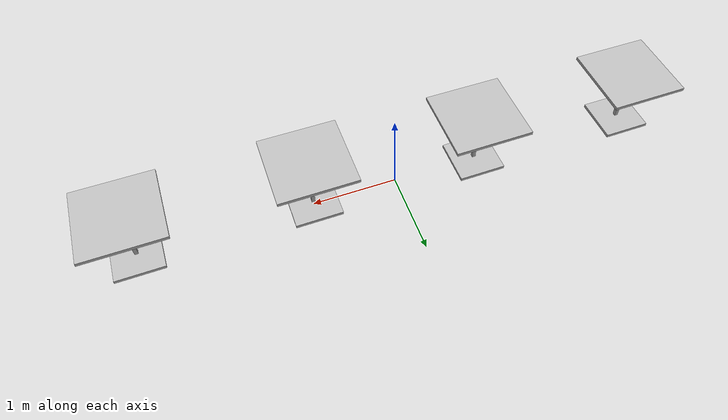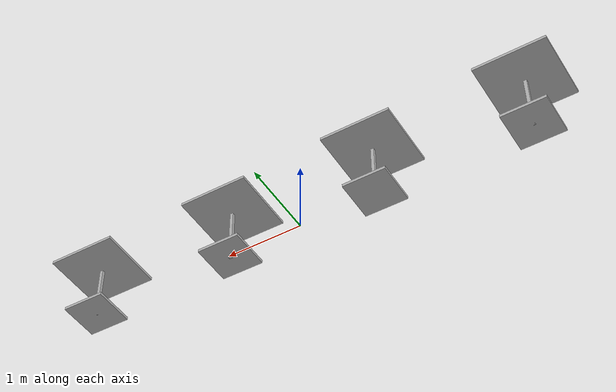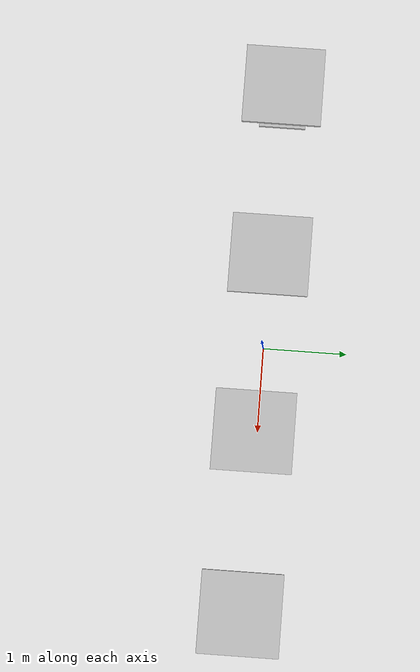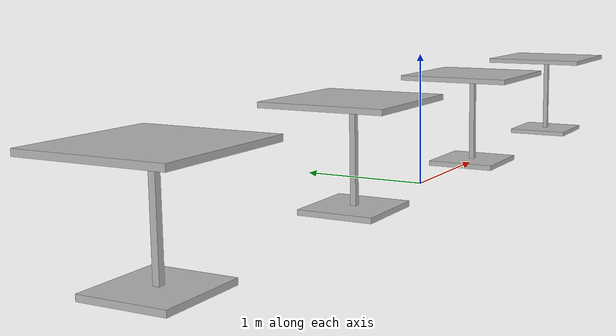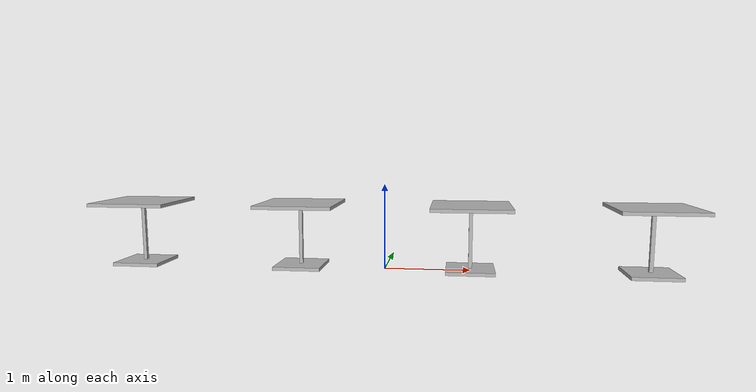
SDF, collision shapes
<?xml version='1.0'?>
<sdf version='1.7'>
  <model name='library_tables'>
    <model name='cafe_table'>
      <static>1</static>
      <link name='link'>
        <collision name='surface'>
          <pose>0 0 0.755 0 -0 0</pose>
          <geometry>
            <box>
              <size>0.913 0.913 0.04</size>
            </box>
          </geometry>
        </collision>
        <collision name='column'>
          <pose>0 0 0.37 0 -0 0</pose>
          <geometry>
            <box>
              <size>0.042 0.042 0.74</size>
            </box>
          </geometry>
        </collision>
        <collision name='base'>
          <pose>0 0 0.02 0 -0 0</pose>
          <geometry>
            <box>
              <size>0.56 0.56 0.04</size>
            </box>
          </geometry>
        </collision>
        <visual name='visual'>
          <geometry>
            <mesh>
              <uri>model://cafe_table/meshes/cafe_table.dae</uri>
            </mesh>
          </geometry>
        </visual>
      </link>
      <pose>3.01541 -0.022966 0 0 -0 0</pose>
    </model>
    <model name='cafe_table_0'>
      <static>1</static>
      <link name='link'>
        <collision name='surface'>
          <pose>0 0 0.755 0 -0 0</pose>
          <geometry>
            <box>
              <size>0.913 0.913 0.04</size>
            </box>
          </geometry>
        </collision>
        <collision name='column'>
          <pose>0 0 0.37 0 -0 0</pose>
          <geometry>
            <box>
              <size>0.042 0.042 0.74</size>
            </box>
          </geometry>
        </collision>
        <collision name='base'>
          <pose>0 0 0.02 0 -0 0</pose>
          <geometry>
            <box>
              <size>0.56 0.56 0.04</size>
            </box>
          </geometry>
        </collision>
        <visual name='visual'>
          <geometry>
            <mesh>
              <uri>model://cafe_table/meshes/cafe_table.dae</uri>
            </mesh>
          </geometry>
        </visual>
      </link>
      <pose>1.00034 -0.022956 0 0 -0 0</pose>
    </model>
    <model name='cafe_table_1'>
      <static>1</static>
      <link name='link'>
        <collision name='surface'>
          <pose>0 0 0.755 0 -0 0</pose>
          <geometry>
            <box>
              <size>0.913 0.913 0.04</size>
            </box>
          </geometry>
        </collision>
        <collision name='column'>
          <pose>0 0 0.37 0 -0 0</pose>
          <geometry>
            <box>
              <size>0.042 0.042 0.74</size>
            </box>
          </geometry>
        </collision>
        <collision name='base'>
          <pose>0 0 0.02 0 -0 0</pose>
          <geometry>
            <box>
              <size>0.56 0.56 0.04</size>
            </box>
          </geometry>
        </collision>
        <visual name='visual'>
          <geometry>
            <mesh>
              <uri>model://cafe_table/meshes/cafe_table.dae</uri>
            </mesh>
          </geometry>
        </visual>
      </link>
      <pose>-1.01473 0.016389 0 0 -0 0</pose>
    </model>
    <model name='cafe_table_2'>
      <static>1</static>
      <link name='link'>
        <collision name='surface'>
          <pose>0 0 0.755 0 -0 0</pose>
          <geometry>
            <box>
              <size>0.913 0.913 0.04</size>
            </box>
          </geometry>
        </collision>
        <collision name='column'>
          <pose>0 0 0.37 0 -0 0</pose>
          <geometry>
            <box>
              <size>0.042 0.042 0.74</size>
            </box>
          </geometry>
        </collision>
        <collision name='base'>
          <pose>0 0 0.02 0 -0 0</pose>
          <geometry>
            <box>
              <size>0.56 0.56 0.04</size>
            </box>
          </geometry>
        </collision>
        <visual name='visual'>
          <geometry>
            <mesh>
              <uri>model://cafe_table/meshes/cafe_table.dae</uri>
            </mesh>
          </geometry>
        </visual>
      </link>
      <pose>-3.00102 0.029534 0 0 -0 0</pose>
    </model>
    <static>0</static>
    <allow_auto_disable>1</allow_auto_disable>
  </model>
</sdf>
